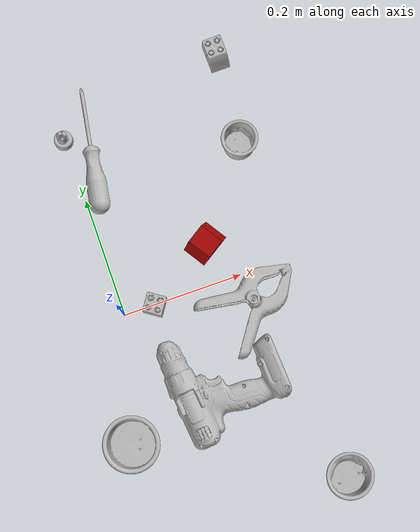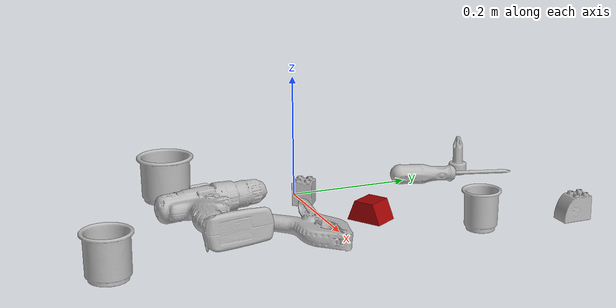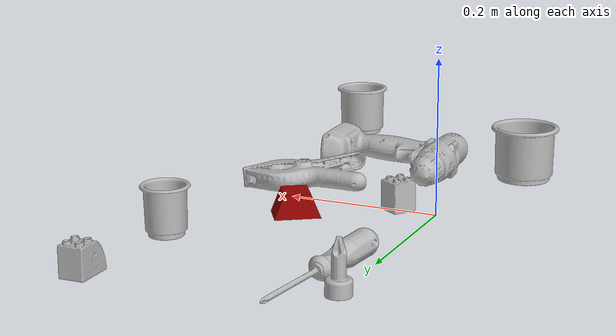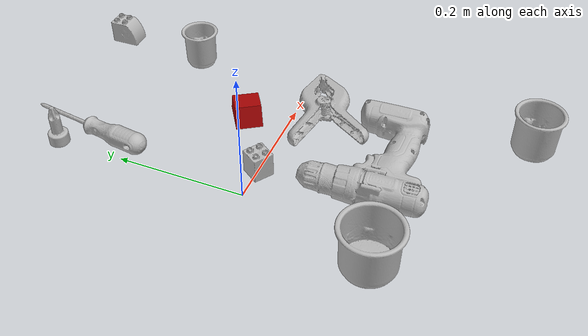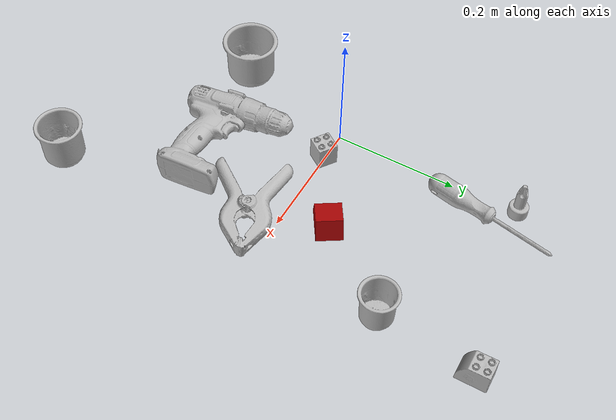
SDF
<sdf version="1.4">
  <world name="default">
    <light name="light1" type="point">
      <pose>0 0 1 0 0 0</pose>
      <diffuse>3 3 3 1</diffuse>
      <specular>3 3 3 1</specular>
    </light>
    <light name="light2" type="point">
      <pose>0 0.5 2 0 0 0</pose>
      <diffuse>1 1 1 1</diffuse>
      <specular>1 1 1 1</specular>
    </light>
    <light name="light3" type="point">
      <pose>0 0.5 2 0 0 0</pose>
      <diffuse>3 3 3 1</diffuse>
      <specular>3 3 3 1</specular>
    </light>
    <scene>
      <ambient>0.7 0.7 0.7</ambient>
    </scene>
    <model name="cup1">
      <link name="link_cup1">
        <collision name="default">
          <geometry>
            <mesh>
              <uri>model://b_cups/collision_meshes/collision.obj</uri>
              <scale>1.0 1.0 1.0</scale>
            </mesh>
          </geometry>
          <surface>
            <friction>
              <ode>
                <mu>0.5</mu>
                <mu2>0.5</mu2>
              </ode>
            </friction>
          <contact>
        <ode>
            <max_vel>0</max_vel>
            <min_depth>0.0001</min_depth>
            <kp>1e8</kp>
        </ode>
    </contact></surface>
        </collision>
        <visual name="default">
          <geometry>
            <mesh>
              <uri>model://b_cups/visual_meshes/visual.dae</uri>
              <scale>1.0 1.0 1.0</scale>
            </mesh>
          </geometry>
        </visual>
        <inertial>
          <mass>0.048613063991069794</mass>
          <pose>0.0005182003951631486 0.0018058597343042493 -0.0013381808530539274 0.11356326710502956 0.03872484102688303 -0.34569225342860055</pose>
          <inertia>
            <ixx>3.1820662e-05</ixx>
            <iyy>3.121653e-05</iyy>
            <izz>2.6776484e-05</izz>
            <ixy>0</ixy>
            <ixz>0</ixz>
            <iyz>0</iyz>
          </inertia>
        </inertial>
      </link>
      <pose>0.26932910084724426 0.20410233736038208 0.031996097415685654 -0.007642662388564483 -0.003803106841816582 -0.984305739139977</pose>
    </model>
    <model name="cup2">
      <link name="link_cup2">
        <collision name="default">
          <geometry>
            <mesh>
              <uri>model://e_cups/collision_meshes/collision.obj</uri>
              <scale>1.0 1.0 1.0</scale>
            </mesh>
          </geometry>
          <surface>
            <friction>
              <ode>
                <mu>0.5</mu>
                <mu2>0.5</mu2>
              </ode>
            </friction>
          <contact>
        <ode>
            <max_vel>0</max_vel>
            <min_depth>0.0001</min_depth>
            <kp>1e8</kp>
        </ode>
    </contact></surface>
        </collision>
        <visual name="default">
          <geometry>
            <mesh>
              <uri>model://e_cups/visual_meshes/visual.dae</uri>
              <scale>1.0 1.0 1.0</scale>
            </mesh>
          </geometry>
        </visual>
        <inertial>
          <mass>0.07592208683490753</mass>
          <pose>0.0011355738388374448 0.002879784908145666 -0.003882972290739417 0.695241209711482 0.0876783799590152 -0.5235234031188288</pose>
          <inertia>
            <ixx>6.6944274e-05</ixx>
            <iyy>6.996636e-05</iyy>
            <izz>6.400647e-05</izz>
            <ixy>0</ixy>
            <ixz>0</ixz>
            <iyz>0</iyz>
          </inertia>
        </inertial>
      </link>
      <pose>0.25374728441238403 -0.36208897829055786 0.03560025244951248 -1.6554203171335405e-05 1.0717325416602255e-05 0.5000304688594259</pose>
    </model>
    <model name="cup3">
      <link name="link_cup3">
        <collision name="default">
          <geometry>
            <mesh>
              <uri>model://h_cups/collision_meshes/collision.obj</uri>
              <scale>1.0 1.0 1.0</scale>
            </mesh>
          </geometry>
          <surface>
            <friction>
              <ode>
                <mu>0.5</mu>
                <mu2>0.5</mu2>
              </ode>
            </friction>
          <contact>
        <ode>
            <max_vel>0</max_vel>
            <min_depth>0.0001</min_depth>
            <kp>1e8</kp>
        </ode>
    </contact></surface>
        </collision>
        <visual name="default">
          <geometry>
            <mesh>
              <uri>model://h_cups/visual_meshes/visual.dae</uri>
              <scale>1.0 1.0 1.0</scale>
            </mesh>
          </geometry>
        </visual>
        <inertial>
          <mass>0.07054857164621353</mass>
          <pose>-2.7030857381760143e-05 0.0002301865170011297 -0.0018405391601845622 -0.024362378998248252 0.0654525662963329 0.12884761756284485</pose>
          <inertia>
            <ixx>9.1110225e-05</ixx>
            <iyy>9.002296e-05</iyy>
            <izz>9.5549614e-05</izz>
            <ixy>0</ixy>
            <ixz>0</ixz>
            <iyz>0</iyz>
          </inertia>
        </inertial>
      </link>
      <pose>-0.05416475608944893 -0.20271818339824677 0.037758003920316696 -9.211838526297791e-08 2.721852924748835e-09 2.710712828193291</pose>
    </model>
    <model name="toy1">
      <link name="link_toy1">
        <collision name="default">
          <geometry>
            <mesh>
              <uri>model://f_lego_duplo/collision_meshes/collision.obj</uri>
              <scale>1.0 1.0 1.0</scale>
            </mesh>
          </geometry>
          <surface>
            <friction>
              <ode>
                <mu>0.5</mu>
                <mu2>0.5</mu2>
              </ode>
            </friction>
          <contact>
        <ode>
            <max_vel>0</max_vel>
            <min_depth>0.0001</min_depth>
            <kp>1e8</kp>
        </ode>
    </contact></surface>
        </collision>
        <visual name="default">
          <geometry>
            <mesh>
              <uri>model://f_lego_duplo/visual_meshes/visual.dae</uri>
              <scale>1.0 1.0 1.0</scale>
            </mesh>
          </geometry>
        </visual>
        <inertial>
          <mass>0.027637142688035965</mass>
          <pose>2.3694037736277096e-05 0.0001339315203949809 0.0018837873358279467 0.029838580482088747 -0.014425059949813135 -0.6756637855802661</pose>
          <inertia>
            <ixx>5.8398805e-06</ixx>
            <iyy>5.8919077e-06</iyy>
            <izz>5.069264e-06</izz>
            <ixy>0</ixy>
            <ixz>0</ixz>
            <iyz>0</iyz>
          </inertia>
        </inertial>
      </link>
      <pose>0.05183826759457588 -0.0018870083149522543 0.021871009841561317 2.2369041255873006e-06 -8.741982926506259e-07 -0.5964957924589138</pose>
    </model>
    <model name="toy2">
      <link name="link_toy2">
        <collision name="default">
          <geometry>
            <mesh>
              <uri>model://d_toy_airplane/collision_meshes/collision.obj</uri>
              <scale>1.0 1.0 1.0</scale>
            </mesh>
          </geometry>
          <surface>
            <friction>
              <ode>
                <mu>0.5</mu>
                <mu2>0.5</mu2>
              </ode>
            </friction>
          <contact>
        <ode>
            <max_vel>0</max_vel>
            <min_depth>0.0001</min_depth>
            <kp>1e8</kp>
        </ode>
    </contact></surface>
        </collision>
        <visual name="default">
          <geometry>
            <mesh>
              <uri>model://d_toy_airplane/visual_meshes/visual.dae</uri>
              <scale>1.0 1.0 1.0</scale>
            </mesh>
          </geometry>
        </visual>
        <inertial>
          <mass>0.017859498038887978</mass>
          <pose>9.410335042048246e-05 -5.809318827232346e-05 -0.011728094890713692 0.0002667298520076861 0.004679004392369758 0.5194091511239993</pose>
          <inertia>
            <ixx>5.35393e-06</ixx>
            <iyy>5.3579683e-06</iyy>
            <izz>1.6163864e-06</izz>
            <ixy>0</ixy>
            <ixz>0</ixz>
            <iyz>0</iyz>
          </inertia>
        </inertial>
      </link>
      <pose>-0.0019057636382058263 0.30652153491973877 0.03333906829357147 2.204950860476742e-05 -8.834561494187946e-05 -2.934969426257925</pose>
    </model>
    <model name="toy3">
      <link name="link_toy3">
        <collision name="default">
          <geometry>
            <mesh>
              <uri>model://prism/collision_meshes/collision.obj</uri>
              <scale>0.5 0.5 0.5</scale>
            </mesh>
          </geometry>
          <surface>
            <friction>
              <ode>
                <mu>0.5</mu>
                <mu2>0.5</mu2>
              </ode>
            </friction>
          <contact>
        <ode>
            <max_vel>0</max_vel>
            <min_depth>0.0001</min_depth>
            <kp>1e8</kp>
        </ode>
    </contact></surface>
        </collision>
        <visual name="default">
          <geometry>
            <mesh>
              <uri>model://prism/visual_meshes/visual.dae</uri>
              <scale>0.5 0.5 0.5</scale>
            </mesh>
          </geometry>
        </visual>
        <inertial>
          <mass>0.04761093109846115</mass>
          <pose>-4.92679828312248e-05 -2.480786349678965e-07 -0.001693455153144896 0.0 0.006559181231804993 0.0</pose>
          <inertia>
            <ixx>1.074207e-05</ixx>
            <iyy>1.2981929e-05</iyy>
            <izz>1.590131e-05</izz>
            <ixy>0</ixy>
            <ixz>0</ixz>
            <iyz>0</iyz>
          </inertia>
        </inertial>
      </link>
      <pose>0.1626390516757965 0.0680941715836525 0.016085002571344376 1.0599369613285987e-07 -5.2581208946236566e-08 -2.5686719276193126</pose>
    </model>
    <model name="toy4">
      <link name="link_toy4">
        <collision name="default">
          <geometry>
            <mesh>
              <uri>model://d_lego_duplo/collision_meshes/collision.obj</uri>
              <scale>1.0 1.0 1.0</scale>
            </mesh>
          </geometry>
          <surface>
            <friction>
              <ode>
                <mu>0.5</mu>
                <mu2>0.5</mu2>
              </ode>
            </friction>
          <contact>
        <ode>
            <max_vel>0</max_vel>
            <min_depth>0.0001</min_depth>
            <kp>1e8</kp>
        </ode>
    </contact></surface>
        </collision>
        <visual name="default">
          <geometry>
            <mesh>
              <uri>model://d_lego_duplo/visual_meshes/visual.dae</uri>
              <scale>1.0 1.0 1.0</scale>
            </mesh>
          </geometry>
        </visual>
        <inertial>
          <mass>0.06000049039721489</mass>
          <pose>0.0028305640444159508 0.0001636611996218562 0.000858980929479003 0.08010949527318252 -0.38355210287845315 0.0010297055105996263</pose>
          <inertia>
            <ixx>1.1615211e-05</ixx>
            <iyy>1.6485134e-05</iyy>
            <izz>1.5897598e-05</izz>
            <ixy>0</ixy>
            <ixz>0</ixz>
            <iyz>0</iyz>
          </inertia>
        </inertial>
      </link>
      <pose>0.283548504114151 0.3594321608543396 0.021739771589636803 -3.56684569161935e-05 -2.915769065811448e-05 1.5909128095255192</pose>
    </model>
    <model name="hardware1">
      <link name="link_hardware1">
        <collision name="default">
          <geometry>
            <mesh>
              <uri>model://phillips_screwdriver/collision_meshes/collision.obj</uri>
              <scale>1.0 1.0 1.0</scale>
            </mesh>
          </geometry>
          <surface>
            <friction>
              <ode>
                <mu>0.5</mu>
                <mu2>0.5</mu2>
              </ode>
            </friction>
          <contact>
        <ode>
            <max_vel>0</max_vel>
            <min_depth>0.0001</min_depth>
            <kp>1e8</kp>
        </ode>
    </contact></surface>
        </collision>
        <visual name="default">
          <geometry>
            <mesh>
              <uri>model://phillips_screwdriver/visual_meshes/visual.dae</uri>
              <scale>1.0 1.0 1.0</scale>
            </mesh>
          </geometry>
        </visual>
        <inertial>
          <mass>0.11704345047473907</mass>
          <pose>-0.04777182638645172 0.0010362302418798208 -0.0004555549821816385 -0.1571668982332543 0.0058509943133797405 -0.002156735283865719</pose>
          <inertia>
            <ixx>1.3751404e-05</ixx>
            <iyy>0.00017241857</iyy>
            <izz>0.0001725651</izz>
            <ixy>0</ixy>
            <ixz>0</ixz>
            <iyz>0</iyz>
          </inertia>
        </inertial>
      </link>
      <pose>0.03597297891974449 0.27163195610046387 0.01540965773165226 0.06561895388409784 0.03756787275552536 1.4085180104699315</pose>
    </model>
    <model name="hardware2">
      <link name="link_hardware2">
        <collision name="default">
          <geometry>
            <mesh>
              <uri>model://large_clamp/collision_meshes/collision.obj</uri>
              <scale>1.0 1.0 1.0</scale>
            </mesh>
          </geometry>
          <surface>
            <friction>
              <ode>
                <mu>0.5</mu>
                <mu2>0.5</mu2>
              </ode>
            </friction>
          <contact>
        <ode>
            <max_vel>0</max_vel>
            <min_depth>0.0001</min_depth>
            <kp>1e8</kp>
        </ode>
    </contact></surface>
        </collision>
        <visual name="default">
          <geometry>
            <mesh>
              <uri>model://large_clamp/visual_meshes/visual.dae</uri>
              <scale>1.0 1.0 1.0</scale>
            </mesh>
          </geometry>
        </visual>
        <inertial>
          <mass>0.18953841924667358</mass>
          <pose>0.00636935792863369 0.0003585682134144008 -0.00018398056272417307 -0.002133075536327147 0.009671586607470332 0.026633167384546762</pose>
          <inertia>
            <ixx>0.00016722476</ixx>
            <iyy>0.0003175689</iyy>
            <izz>0.00045940367</izz>
            <ixy>0</ixy>
            <ixz>0</ixz>
            <iyz>0</iyz>
          </inertia>
        </inertial>
      </link>
      <pose>0.20541124045848846 -0.04798342287540436 0.018503760918974876 -0.011646092388889652 0.046929987301954745 0.3888039270875356</pose>
    </model>
    <model name="hardware3">
      <link name="link_hardware3">
        <collision name="default">
          <geometry>
            <mesh>
              <uri>model://power_drill/collision_meshes/collision.obj</uri>
              <scale>1.0 1.0 1.0</scale>
            </mesh>
          </geometry>
          <surface>
            <friction>
              <ode>
                <mu>0.5</mu>
                <mu2>0.5</mu2>
              </ode>
            </friction>
          <contact>
        <ode>
            <max_vel>0</max_vel>
            <min_depth>0.0001</min_depth>
            <kp>1e8</kp>
        </ode>
    </contact></surface>
        </collision>
        <visual name="default">
          <geometry>
            <mesh>
              <uri>model://power_drill/visual_meshes/visual.dae</uri>
              <scale>1.0 1.0 1.0</scale>
            </mesh>
          </geometry>
        </visual>
        <inertial>
          <mass>0.5207164287567139</mass>
          <pose>-0.014780543744564056 0.014369428157806396 0.0012414171360433102 0.004609162650930739 0.004073022346756156 -0.183626968168983</pose>
          <inertia>
            <ixx>0.0021219437</ixx>
            <iyy>0.00083487434</iyy>
            <izz>0.002802402</izz>
            <ixy>0</ixy>
            <ixz>0</ixz>
            <iyz>0</iyz>
          </inertia>
        </inertial>
      </link>
      <pose>0.12013112753629684 -0.15080314874649048 0.02731245383620262 -0.030306046439119855 -0.04725296655681475 1.6541948087000555</pose>
    </model>
  <physics type="ode">
      <max_contacts>50</max_contacts>
      <ode>
        <solver>
          <type>quick</type>
          <iters>75</iters>
        </solver>
        <constraints>
          <contact_max_correcting_vel>0</contact_max_correcting_vel>
          <contact_surface_layer>0</contact_surface_layer>
        </constraints>
      </ode>
    </physics></world>
</sdf>
